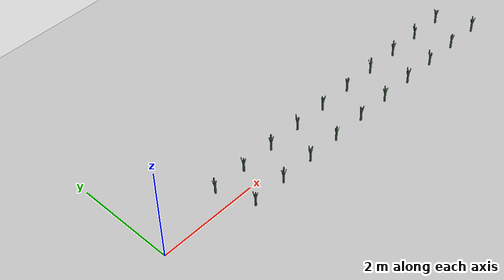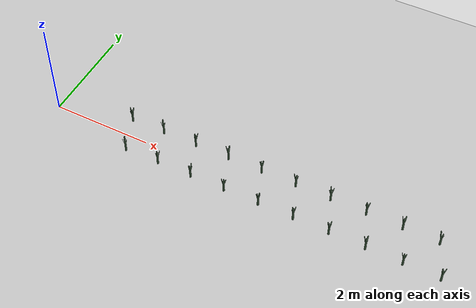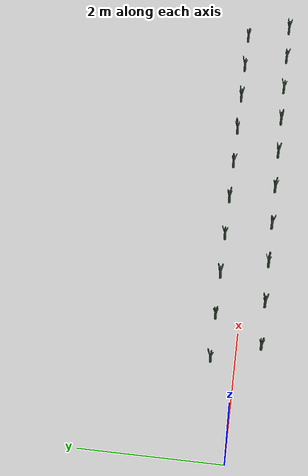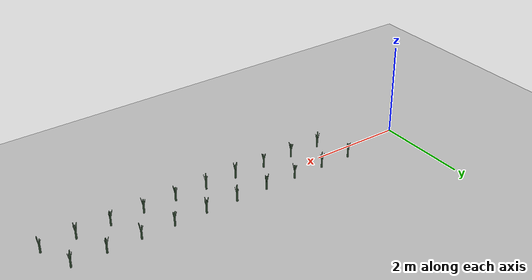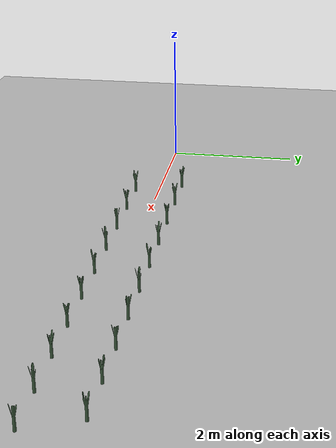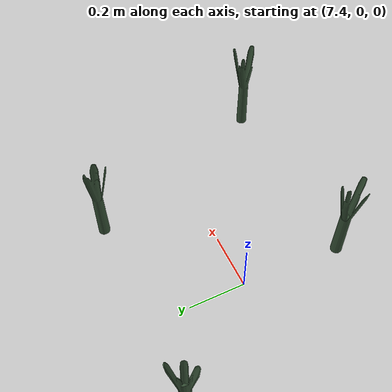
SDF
<sdf version="1.6">
 <world name="default">
  <light name="sun" type="directional">
   <pose>0 0 10 0 -0 0</pose>
   <diffuse>0.5 0.5 0.5 1</diffuse>
   <specular>0.1 0.1 0.1 1</specular>
   <attenuation>
    <range>1000</range>
    <constant>0.9</constant>
    <linear>0.01</linear>
    <quadratic>0.001</quadratic>
   </attenuation>
   <direction>0.9 0.5 -1</direction>
  </light>
  <scene><background>130 200 255 1</background><ambient>130 140 140 1</ambient></scene>
  <include><uri>model://dirt_plane</uri></include>
  <include><uri>model://Leek</uri><pose>1.500000 0.350000 0.15 0 0 -80.520015</pose><static>0</static></include>
  <include><uri>model://Leek</uri><pose>2.200000 0.350000 0.15 0 0 71.438619</pose><static>0</static></include>
  <include><uri>model://Leek</uri><pose>2.900000 0.350000 0.15 0 0 -63.636553</pose><static>0</static></include>
  <include><uri>model://Leek</uri><pose>3.600000 0.350000 0.15 0 0 32.933731</pose><static>0</static></include>
  <include><uri>model://Leek</uri><pose>4.300000 0.350000 0.15 0 0 85.836866</pose><static>0</static></include>
  <include>
   <uri>model://Leek</uri>
   <pose>5.000000 0.350000 0.15 0 0 -135.030252</pose>
   <static>0</static>
  </include>
  <include><uri>model://Leek</uri><pose>5.700000 0.350000 0.15 0 0 113.605694</pose><static>0</static></include>
  <include><uri>model://Leek</uri><pose>6.400000 0.350000 0.15 0 0 -82.727922</pose><static>0</static></include>
  <include><uri>model://Leek</uri><pose>7.100000 0.350000 0.15 0 0 158.218156</pose><static>0</static></include>
  <include><uri>model://Leek</uri><pose>7.800000 0.350000 0.15 0 0 -97.988807</pose><static>0</static></include>
  <include>
   <uri>model://Leek</uri>
   <pose>1.775083 -0.350000 0.15 0 0 -161.119242</pose>
   <static>0</static>
  </include>
  <include>
   <uri>model://Leek</uri>
   <pose>2.475083 -0.350000 0.15 0 0 137.287888</pose>
   <static>0</static>
  </include>
  <include>
   <uri>model://Leek</uri>
   <pose>3.175083 -0.350000 0.15 0 0 -69.256140</pose>
   <static>0</static>
  </include>
  <include><uri>model://Leek</uri><pose>3.875083 -0.350000 0.15 0 0 28.668861</pose><static>0</static></include>
  <include><uri>model://Leek</uri><pose>4.575083 -0.350000 0.15 0 0 10.554659</pose><static>0</static></include>
  <include><uri>model://Leek</uri><pose>5.275083 -0.350000 0.15 0 0 30.598244</pose><static>0</static></include>
  <include><uri>model://Leek</uri><pose>5.975083 -0.350000 0.15 0 0 99.983506</pose><static>0</static></include>
  <include>
   <uri>model://Leek</uri>
   <pose>6.675083 -0.350000 0.15 0 0 -80.320654</pose>
   <static>0</static>
  </include>
  <include>
   <uri>model://Leek</uri>
   <pose>7.375083 -0.350000 0.15 0 0 141.666758</pose>
   <static>0</static>
  </include>
  <include>
   <uri>model://Leek</uri>
   <pose>8.075083 -0.350000 0.15 0 0 -139.272383</pose>
   <static>0</static>
  </include>
 </world>
</sdf>

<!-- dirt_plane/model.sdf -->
<sdf version="1.4">
<model name="dirt_plane">
  <static>true</static>
    <link name="link">
      <collision name="collision">
        <geometry>
          <plane>
            <normal>0 0 1</normal>
            <size>100 100</size>
          </plane>
        </geometry>
        <surface>
          <friction>
            <ode>
              <mu>100</mu>
              <mu2>50</mu2>
            </ode>
          </friction>
        </surface>
      </collision>
      <visual name="visual">
        <cast_shadows>false</cast_shadows>
        <geometry>
          <plane>
            <normal>0 0 1</normal>
            <size>100 100</size>
          </plane>
        </geometry>
        <material>
          <script>
            <uri>model://ground_plane/materials/scripts/my_ground_plane.material</uri>
            <uri>model://ground_plane/materials/textures</uri>
            <name>my_ground_plane/Dirt</name>
          </script>
        </material>
      </visual>
    </link>
  </model>
</sdf>

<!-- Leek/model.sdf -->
<sdf version='1.6'>
  <model name='Leek'>
    <link name='link'>
      <pose frame=''>0 0 0 0 -0 0</pose>
      <inertial>
        <mass>1</mass>
        <inertia>
          <ixx>0.145833</ixx>
          <ixy>0</ixy>
          <ixz>0</ixz>
          <iyy>0.145833</iyy>
          <iyz>0</iyz>
          <izz>0.125</izz>
        </inertia>
        <pose frame=''>0 0 0 0 -0 0</pose>
      </inertial>
      <self_collide>0</self_collide>
      <kinematic>0</kinematic>
      <gravity>1</gravity>
      <visual name='visual'>
        <geometry>
          <mesh>
            <uri>model://Leek/Poireau.dae</uri>
            <scale>1 1 1</scale>
          </mesh>
        </geometry>
        <material>
          <script>
            <name>Gazebo/Grey</name>
            <uri>file://media/materials/scripts/gazebo.material</uri>
          </script>
          <ambient>0.3 0.7 0.4 0</ambient>
          <diffuse>0.2 0.3 0.2 0</diffuse>
          <specular>0 0 0 1</specular>
          <emissive>0 0 0 1</emissive>
          <shader type='vertex'>
            <normal_map>__default__</normal_map>
          </shader>
        </material>
        <pose frame=''>0 0 -0.08 0 -0 0</pose>
        <cast_shadows>1</cast_shadows>
        <transparency>0</transparency>
      </visual>
      <collision name='collision'>
        <laser_retro>0</laser_retro>
        <max_contacts>10</max_contacts>
        <pose frame=''>0 0 0 0 -0 0</pose>
        <geometry>
          <cylinder>
            <radius>0.02</radius>
            <length>0.25</length>
          </cylinder>
        </geometry>
        <surface>
          <friction>
            <ode>
              <mu>1</mu>
              <mu2>1</mu2>
              <fdir1>0 0 0</fdir1>
              <slip1>0</slip1>
              <slip2>0</slip2>
            </ode>
            <torsional>
              <coefficient>1</coefficient>
              <patch_radius>0</patch_radius>
              <surface_radius>0</surface_radius>
              <use_patch_radius>1</use_patch_radius>
              <ode>
                <slip>0</slip>
              </ode>
            </torsional>
          </friction>
          <bounce>
            <restitution_coefficient>0</restitution_coefficient>
            <threshold>1e+06</threshold>
          </bounce>
          <contact>
            <collide_without_contact>0</collide_without_contact>
            <collide_without_contact_bitmask>1</collide_without_contact_bitmask>
            <collide_bitmask>1</collide_bitmask>
            <ode>
              <soft_cfm>0</soft_cfm>
              <soft_erp>0.2</soft_erp>
              <kp>1e+13</kp>
              <kd>1</kd>
              <max_vel>0.01</max_vel>
              <min_depth>0</min_depth>
            </ode>
            <bullet>
              <split_impulse>1</split_impulse>
              <split_impulse_penetration_threshold>-0.01</split_impulse_penetration_threshold>
              <soft_cfm>0</soft_cfm>
              <soft_erp>0.2</soft_erp>
              <kp>1e+13</kp>
              <kd>1</kd>
            </bullet>
          </contact>
        </surface>
      </collision>
    </link>
    <static>0</static>
    <allow_auto_disable>1</allow_auto_disable>
  </model>
</sdf>
